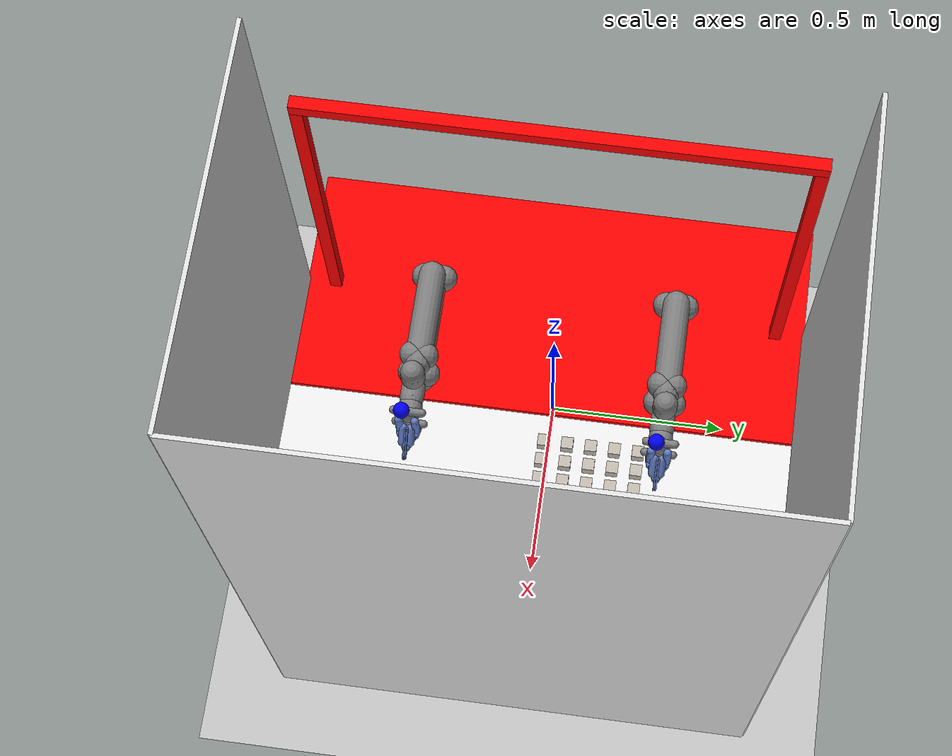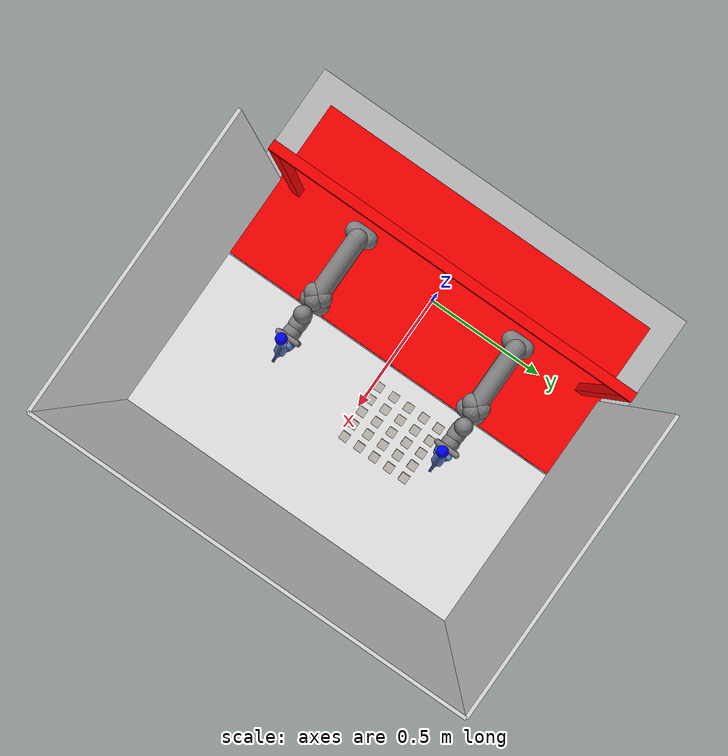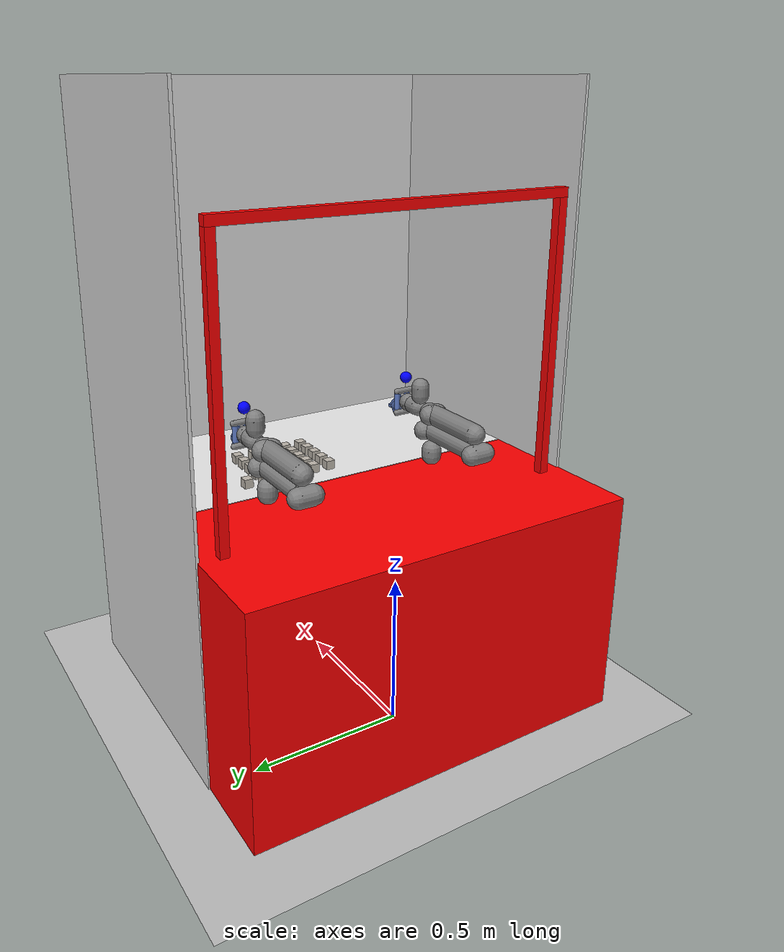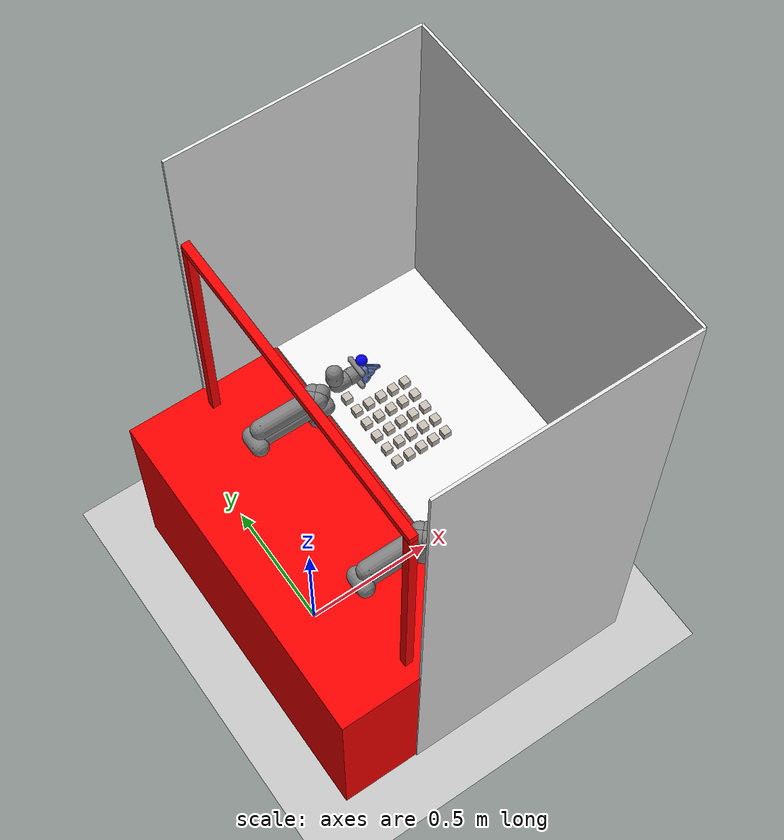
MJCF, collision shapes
<mujoco model="yam_bimanual">
  <compiler angle="radian" meshdir="assets" boundmass="0.001" boundinertia="0.001"/>

  <option integrator="implicitfast"/>

  <visual>
    <global azimuth="120" elevation="-20" offwidth="1920" offheight="1080"/>
    <quality shadowsize="8192" offsamples="16"/>
    <headlight ambient="0.40 0.40 0.40" diffuse="0.0 0.0 0.0" specular="0 0 0"/>
    <rgba haze="1.0 1.0 1.0 1"/>
  </visual>

  <default>
    <default class="yam">
      <position inheritrange="1"/>
      <joint frictionloss="0.1" axis="0 0 1"/>
      <default class="dm4340">
        <joint armature="0.032"/>
        <position kp="40" kv="2.5" forcerange="-28 28"/>
      </default>
      <default class="dm4310">
        <joint armature="0.0018"/>
        <position kp="10" kv="1" forcerange="-10 10"/>
      </default>
      <default class="visual">
        <geom type="mesh" contype="0" conaffinity="0" density="0" group="2" material="black"/>
      </default>
      <default class="collision">
        <geom group="3" type="capsule"/>
        <default class="sphere_collision">
          <geom size="0.0006 0 0" type="sphere" rgba="1 0 0 1"/>
        </default>
      </default>
      <default class="finger">
        <joint type="slide" armature="0.1" frictionloss="0.1"/>
        <position ctrlrange="0.0 0.0495" kp="100" kv="10" inheritrange="0"/>
      </default>
    </default>
    <default class="drawer_col">
      <geom type="mesh" condim="6" friction="1.5 0.1 0.01" density="0" solref="0.004 1" solimp="0.998 0.998 0.001" priority="1" group="3" rgba="0 0 0 0"/>
    </default>
    <default class="block_col">
      <geom type="box" condim="6" friction="3.0 0.1 0.01" solref="0.004 1" solimp="0.998 0.998 0.001" priority="1"/>
    </default>
  </default>

  <asset>
    <material name="black" rgba="0.30 0.30 0.30 1"/>
    <material name="white" rgba="0.9 0.9 0.9 1"/>

    <!-- YAM robot meshes -->
    <mesh file="i2rt_yam/assets/model2.stl"/>
    <mesh file="i2rt_yam/assets/model2__2.stl"/>
    <mesh file="i2rt_yam/assets/model2__3.stl"/>
    <mesh file="i2rt_yam/assets/model2__4.stl"/>
    <mesh file="i2rt_yam/assets/model2__5.stl"/>
    <mesh file="i2rt_yam/assets/model2__6.stl"/>
    <mesh file="i2rt_yam/assets/model2__7.stl"/>
    <mesh file="i2rt_yam/assets/model2__8.stl"/>
    <mesh file="i2rt_yam/assets/model2__9.stl"/>
    <mesh file="i2rt_yam/assets/model2__10.stl"/>
    <mesh file="i2rt_yam/assets/model2__11.stl"/>
    <mesh file="i2rt_yam/assets/model2__12.stl"/>
    <mesh file="i2rt_yam/assets/model2__13.stl"/>
    <mesh file="i2rt_yam/assets/model2__14.stl"/>
    <mesh file="i2rt_yam/assets/model2__15.stl"/>
    <mesh file="i2rt_yam/assets/model2__16.stl"/>
    <mesh file="i2rt_yam/assets/model2__17.stl"/>
    <mesh name="base_visual_gate" file="i2rt_yam/assets/base_visual_gate.stl"/>
    <mesh name="camera_d405" file="i2rt_yam/assets/d405.stl"/>

    <!-- Drawer meshes -->
    <mesh name="mk1157_counter_collision_01" file="drawer/meshes/mk1157_counter_collision_01.stl" scale="0.4 0.23 0.1"/>
    <mesh name="mk1157_counter_collision_02" file="drawer/meshes/mk1157_counter_collision_02.stl" scale="0.4 0.23 0.1"/>
    <mesh name="mk1157_counter_collision_03" file="drawer/meshes/mk1157_counter_collision_03.stl" scale="0.4 0.23 0.1"/>
    <mesh name="mk1157_counter_collision_04" file="drawer/meshes/mk1157_counter_collision_04.stl" scale="0.4 0.23 0.1"/>
    <mesh name="mk1157_counter_collision_05" file="drawer/meshes/mk1157_counter_collision_05.stl" scale="0.4 0.23 0.1"/>
    <mesh name="mk1157_counter_collision_06" file="drawer/meshes/mk1157_counter_collision_06.stl" scale="0.4 0.23 0.1"/>
    <mesh name="mk1157_counter_collision_07" file="drawer/meshes/mk1157_counter_collision_07.stl" scale="0.4 0.23 0.1"/>
    <mesh name="mk1157_drawer_collision_01" file="drawer/meshes/mk1157_drawer_collision_01.stl" scale="0.37 0.23 0.15"/>
    <mesh name="mk1157_drawer_collision_02" file="drawer/meshes/mk1157_drawer_collision_02.stl" scale="0.37 0.23 0.15"/>
    <mesh name="mk1157_drawer_collision_03" file="drawer/meshes/mk1157_drawer_collision_03.stl" scale="0.37 0.23 0.15"/>
    <mesh name="mk1157_drawer_collision_04" file="drawer/meshes/mk1157_drawer_collision_04.stl" scale="0.37 0.23 0.15"/>
    <mesh name="mk1157_drawer_collision_05" file="drawer/meshes/mk1157_drawer_collision_05.stl" scale="0.37 0.23 0.15"/>

    <!-- Letter block textures (A–Z) -->
    <texture type="2d" name="tex_letter_A" file="assets/letters/letter_A.png"/>
    <texture type="2d" name="tex_letter_B" file="assets/letters/letter_B.png"/>
    <texture type="2d" name="tex_letter_C" file="assets/letters/letter_C.png"/>
    <texture type="2d" name="tex_letter_D" file="assets/letters/letter_D.png"/>
    <texture type="2d" name="tex_letter_E" file="assets/letters/letter_E.png"/>
    <texture type="2d" name="tex_letter_F" file="assets/letters/letter_F.png"/>
    <texture type="2d" name="tex_letter_G" file="assets/letters/letter_G.png"/>
    <texture type="2d" name="tex_letter_H" file="assets/letters/letter_H.png"/>
    <texture type="2d" name="tex_letter_I" file="assets/letters/letter_I.png"/>
    <texture type="2d" name="tex_letter_J" file="assets/letters/letter_J.png"/>
    <texture type="2d" name="tex_letter_K" file="assets/letters/letter_K.png"/>
    <texture type="2d" name="tex_letter_L" file="assets/letters/letter_L.png"/>
    <texture type="2d" name="tex_letter_M" file="assets/letters/letter_M.png"/>
    <texture type="2d" name="tex_letter_N" file="assets/letters/letter_N.png"/>
    <texture type="2d" name="tex_letter_O" file="assets/letters/letter_O.png"/>
    <texture type="2d" name="tex_letter_P" file="assets/letters/letter_P.png"/>
    <texture type="2d" name="tex_letter_Q" file="assets/letters/letter_Q.png"/>
    <texture type="2d" name="tex_letter_R" file="assets/letters/letter_R.png"/>
    <texture type="2d" name="tex_letter_S" file="assets/letters/letter_S.png"/>
    <texture type="2d" name="tex_letter_T" file="assets/letters/letter_T.png"/>
    <texture type="2d" name="tex_letter_U" file="assets/letters/letter_U.png"/>
    <texture type="2d" name="tex_letter_V" file="assets/letters/letter_V.png"/>
    <texture type="2d" name="tex_letter_W" file="assets/letters/letter_W.png"/>
    <texture type="2d" name="tex_letter_X" file="assets/letters/letter_X.png"/>
    <texture type="2d" name="tex_letter_Y" file="assets/letters/letter_Y.png"/>
    <texture type="2d" name="tex_letter_Z" file="assets/letters/letter_Z.png"/>

    <material name="mat_letter_A" texture="tex_letter_A" texuniform="true" texrepeat="1 1"/>
    <material name="mat_letter_B" texture="tex_letter_B" texuniform="true" texrepeat="1 1"/>
    <material name="mat_letter_C" texture="tex_letter_C" texuniform="true" texrepeat="1 1"/>
    <material name="mat_letter_D" texture="tex_letter_D" texuniform="true" texrepeat="1 1"/>
    <material name="mat_letter_E" texture="tex_letter_E" texuniform="true" texrepeat="1 1"/>
    <material name="mat_letter_F" texture="tex_letter_F" texuniform="true" texrepeat="1 1"/>
    <material name="mat_letter_G" texture="tex_letter_G" texuniform="true" texrepeat="1 1"/>
    <material name="mat_letter_H" texture="tex_letter_H" texuniform="true" texrepeat="1 1"/>
    <material name="mat_letter_I" texture="tex_letter_I" texuniform="true" texrepeat="1 1"/>
    <material name="mat_letter_J" texture="tex_letter_J" texuniform="true" texrepeat="1 1"/>
    <material name="mat_letter_K" texture="tex_letter_K" texuniform="true" texrepeat="1 1"/>
    <material name="mat_letter_L" texture="tex_letter_L" texuniform="true" texrepeat="1 1"/>
    <material name="mat_letter_M" texture="tex_letter_M" texuniform="true" texrepeat="1 1"/>
    <material name="mat_letter_N" texture="tex_letter_N" texuniform="true" texrepeat="1 1"/>
    <material name="mat_letter_O" texture="tex_letter_O" texuniform="true" texrepeat="1 1"/>
    <material name="mat_letter_P" texture="tex_letter_P" texuniform="true" texrepeat="1 1"/>
    <material name="mat_letter_Q" texture="tex_letter_Q" texuniform="true" texrepeat="1 1"/>
    <material name="mat_letter_R" texture="tex_letter_R" texuniform="true" texrepeat="1 1"/>
    <material name="mat_letter_S" texture="tex_letter_S" texuniform="true" texrepeat="1 1"/>
    <material name="mat_letter_T" texture="tex_letter_T" texuniform="true" texrepeat="1 1"/>
    <material name="mat_letter_U" texture="tex_letter_U" texuniform="true" texrepeat="1 1"/>
    <material name="mat_letter_V" texture="tex_letter_V" texuniform="true" texrepeat="1 1"/>
    <material name="mat_letter_W" texture="tex_letter_W" texuniform="true" texrepeat="1 1"/>
    <material name="mat_letter_X" texture="tex_letter_X" texuniform="true" texrepeat="1 1"/>
    <material name="mat_letter_Y" texture="tex_letter_Y" texuniform="true" texrepeat="1 1"/>
    <material name="mat_letter_Z" texture="tex_letter_Z" texuniform="true" texrepeat="1 1"/>

    <texture type="skybox" builtin="gradient" rgb1="1.0 1.0 1.0" rgb2="0.98 0.98 0.98" width="512" height="3072"/>
    <texture type="2d" name="groundplane" builtin="checker" mark="edge"
      rgb1="0.55 0.55 0.55" rgb2="0.50 0.50 0.50" markrgb="0.6 0.6 0.6" width="300" height="300"/>
    <material name="groundplane" texture="groundplane" texuniform="true" texrepeat="5 5" reflectance="0.2"/>
  </asset>

  <worldbody>
    <!-- Lighting -->
    <light pos="0 0 1.5" dir="0 0 -1" directional="true"
      diffuse="0.30 0.30 0.30" specular="0.05 0.05 0.05"/>

    <!-- Floor -->
    <geom name="floor" size="0 0 0.05" type="plane" rgba="0.75 0.75 0.75 1"/>

    <!-- Gate/station structure (visual) -->
    <geom type="mesh" contype="0" conaffinity="0" group="2" density="0" rgba="0.60 0.62 0.68 1" mesh="base_visual_gate"/>
    <geom size="0.2975 0.65 0.375" pos="0 0 0.375" type="box" group="3" rgba="1 0 0 0.0"/>

    <!-- Gate collision bodies + top camera -->
    <body name="gate_collision" pos="0 0 0.75">
      <geom size="0.015 0.015 0.45" pos="0 0.575 0.45" type="box" group="3" rgba="1 0 0 0.0"/>
      <geom size="0.015 0.015 0.45" pos="0 -0.575 0.45" type="box" group="3" rgba="1 0 0 0.0"/>
      <geom size="0.015 0.015 0.59" pos="0 0 0.915" quat="0.707107 0.707107 0 0" type="box" group="3" rgba="1 0 0 0.0"/>
      <body name="top_bar_center" pos="0 0 0.915">
        <body name="top_camera_d405" pos="0.08600512 -0.009 0.03932053" quat="0.183012 0.683013 0.683013 0.183012">
          <geom type="mesh" contype="0" conaffinity="0" group="2" density="0.001" mass="0.001"
            rgba="0 0 0 0" mesh="camera_d405"/>
          <body name="top_camera_frame" pos="0.009 0 0" quat="0 0 0 1">
            <camera name="top" pos="0 0 0" quat="0 1 0 0" fovy="58"/>
          </body>
        </body>
      </body>
    </body>

    <!-- Enclosure walls (visual-only) -->
    <geom name="back_wall" type="box" size="0.005 0.65 1.0"
      pos="0.9 0 1.0" group="2" contype="0" conaffinity="0"
      rgba="0.88 0.88 0.88 1"/>
    <geom name="left_wall" type="box" size="0.45 0.005 1.0"
      pos="0.45 0.65 1.0" group="2" contype="0" conaffinity="0"
      rgba="0.88 0.88 0.88 1"/>
    <geom name="right_wall" type="box" size="0.45 0.005 1.0"
      pos="0.45 -0.65 1.0" group="2" contype="0" conaffinity="0"
      rgba="0.88 0.88 0.88 1"/>

    <!-- Play table -->
    <body name="play_table">
      <geom size="0.2975 0.65 0.005" pos="0.6 0 0.745" type="box" group="2" contype="0" conaffinity="0" rgba="0.92 0.92 0.92 1"/>
    </body>
    <geom name="table_plane" type="plane" size="0.2975 0.65 0.01" pos="0.6 0 0.75" rgba="0 0 0 0" group="3"/>

    <!-- Overhead camera -->
    <body name="overhead_camera" pos="0.55 0.0 1.6">
      <camera name="overhead" pos="0 0 0" quat="0.707 0 0 -0.707" fovy="60"/>
    </body>
    <body name="left_side_camera" pos="0.5 0.55 1.05" euler="-1.3 0 3.14159">
      <camera name="left_side" pos="0 0 0" fovy="70"/>
    </body>
    <body name="right_side_camera" pos="0.5 -0.55 1.05" euler="1.3 0 0">
      <camera name="right_side" pos="0 0 0" fovy="70"/>
    </body>

    <!-- ==================== TASK OBJECTS: Drawer + Letter Blocks ==================== -->

    <!-- Letter blocks on table — all 26 letters (A–Z) in a 5×6 grid -->
    <!-- Grid: 5 columns (X: 0.38–0.58, step 0.05), 6 rows (Y: 0.02–0.32, step 0.06) -->
    <body name="block_A" pos="0.38 0.02 0.77">
      <freejoint name="block_A_jnt"/>
      <geom name="block_A_geom" type="box" size="0.015 0.015 0.015" mass="0.044"
        material="mat_letter_A" class="block_col"/>
    </body>
    <body name="block_B" pos="0.43 0.02 0.77">
      <freejoint name="block_B_jnt"/>
      <geom name="block_B_geom" type="box" size="0.015 0.015 0.015" mass="0.044"
        material="mat_letter_B" class="block_col"/>
    </body>
    <body name="block_C" pos="0.48 0.02 0.77">
      <freejoint name="block_C_jnt"/>
      <geom name="block_C_geom" type="box" size="0.015 0.015 0.015" mass="0.044"
        material="mat_letter_C" class="block_col"/>
    </body>
    <body name="block_D" pos="0.53 0.02 0.77">
      <freejoint name="block_D_jnt"/>
      <geom name="block_D_geom" type="box" size="0.015 0.015 0.015" mass="0.044"
        material="mat_letter_D" class="block_col"/>
    </body>
    <body name="block_E" pos="0.58 0.02 0.77">
      <freejoint name="block_E_jnt"/>
      <geom name="block_E_geom" type="box" size="0.015 0.015 0.015" mass="0.044"
        material="mat_letter_E" class="block_col"/>
    </body>

    <body name="block_F" pos="0.38 0.08 0.77">
      <freejoint name="block_F_jnt"/>
      <geom name="block_F_geom" type="box" size="0.015 0.015 0.015" mass="0.044"
        material="mat_letter_F" class="block_col"/>
    </body>
    <body name="block_G" pos="0.43 0.08 0.77">
      <freejoint name="block_G_jnt"/>
      <geom name="block_G_geom" type="box" size="0.015 0.015 0.015" mass="0.044"
        material="mat_letter_G" class="block_col"/>
    </body>
    <body name="block_H" pos="0.48 0.08 0.77">
      <freejoint name="block_H_jnt"/>
      <geom name="block_H_geom" type="box" size="0.015 0.015 0.015" mass="0.044"
        material="mat_letter_H" class="block_col"/>
    </body>
    <body name="block_I" pos="0.53 0.08 0.77">
      <freejoint name="block_I_jnt"/>
      <geom name="block_I_geom" type="box" size="0.015 0.015 0.015" mass="0.044"
        material="mat_letter_I" class="block_col"/>
    </body>
    <body name="block_J" pos="0.58 0.08 0.77">
      <freejoint name="block_J_jnt"/>
      <geom name="block_J_geom" type="box" size="0.015 0.015 0.015" mass="0.044"
        material="mat_letter_J" class="block_col"/>
    </body>

    <body name="block_K" pos="0.38 0.14 0.77">
      <freejoint name="block_K_jnt"/>
      <geom name="block_K_geom" type="box" size="0.015 0.015 0.015" mass="0.044"
        material="mat_letter_K" class="block_col"/>
    </body>
    <body name="block_L" pos="0.43 0.14 0.77">
      <freejoint name="block_L_jnt"/>
      <geom name="block_L_geom" type="box" size="0.015 0.015 0.015" mass="0.044"
        material="mat_letter_L" class="block_col"/>
    </body>
    <body name="block_M" pos="0.48 0.14 0.77">
      <freejoint name="block_M_jnt"/>
      <geom name="block_M_geom" type="box" size="0.015 0.015 0.015" mass="0.044"
        material="mat_letter_M" class="block_col"/>
    </body>
    <body name="block_N" pos="0.53 0.14 0.77">
      <freejoint name="block_N_jnt"/>
      <geom name="block_N_geom" type="box" size="0.015 0.015 0.015" mass="0.044"
        material="mat_letter_N" class="block_col"/>
    </body>
    <body name="block_O" pos="0.58 0.14 0.77">
      <freejoint name="block_O_jnt"/>
      <geom name="block_O_geom" type="box" size="0.015 0.015 0.015" mass="0.044"
        material="mat_letter_O" class="block_col"/>
    </body>

    <body name="block_P" pos="0.38 0.20 0.77">
      <freejoint name="block_P_jnt"/>
      <geom name="block_P_geom" type="box" size="0.015 0.015 0.015" mass="0.044"
        material="mat_letter_P" class="block_col"/>
    </body>
    <body name="block_Q" pos="0.43 0.20 0.77">
      <freejoint name="block_Q_jnt"/>
      <geom name="block_Q_geom" type="box" size="0.015 0.015 0.015" mass="0.044"
        material="mat_letter_Q" class="block_col"/>
    </body>
    <body name="block_R" pos="0.48 0.20 0.77">
      <freejoint name="block_R_jnt"/>
      <geom name="block_R_geom" type="box" size="0.015 0.015 0.015" mass="0.044"
        material="mat_letter_R" class="block_col"/>
    </body>
    <body name="block_S" pos="0.53 0.20 0.77">
      <freejoint name="block_S_jnt"/>
      <geom name="block_S_geom" type="box" size="0.015 0.015 0.015" mass="0.044"
        material="mat_letter_S" class="block_col"/>
    </body>
    <body name="block_T" pos="0.58 0.20 0.77">
      <freejoint name="block_T_jnt"/>
      <geom name="block_T_geom" type="box" size="0.015 0.015 0.015" mass="0.044"
        material="mat_letter_T" class="block_col"/>
    </body>

    <body name="block_U" pos="0.38 0.26 0.77">
      <freejoint name="block_U_jnt"/>
      <geom name="block_U_geom" type="box" size="0.015 0.015 0.015" mass="0.044"
        material="mat_letter_U" class="block_col"/>
    </body>
    <body name="block_V" pos="0.43 0.26 0.77">
      <freejoint name="block_V_jnt"/>
      <geom name="block_V_geom" type="box" size="0.015 0.015 0.015" mass="0.044"
        material="mat_letter_V" class="block_col"/>
    </body>
    <body name="block_W" pos="0.48 0.26 0.77">
      <freejoint name="block_W_jnt"/>
      <geom name="block_W_geom" type="box" size="0.015 0.015 0.015" mass="0.044"
        material="mat_letter_W" class="block_col"/>
    </body>
    <body name="block_X" pos="0.53 0.26 0.77">
      <freejoint name="block_X_jnt"/>
      <geom name="block_X_geom" type="box" size="0.015 0.015 0.015" mass="0.044"
        material="mat_letter_X" class="block_col"/>
    </body>
    <body name="block_Y" pos="0.58 0.26 0.77">
      <freejoint name="block_Y_jnt"/>
      <geom name="block_Y_geom" type="box" size="0.015 0.015 0.015" mass="0.044"
        material="mat_letter_Y" class="block_col"/>
    </body>

    <body name="block_Z" pos="0.38 0.32 0.77">
      <freejoint name="block_Z_jnt"/>
      <geom name="block_Z_geom" type="box" size="0.015 0.015 0.015" mass="0.044"
        material="mat_letter_Z" class="block_col"/>
    </body>

    <!-- ==================== LEFT ARM ==================== -->
    <body name="left_arm" pos="0.2525 0.31 0.76" childclass="yam">
      <geom class="visual" pos="0 0 -0.0006" quat="1 0 0 1" mesh="model2"/>
      <geom class="collision" size="0.033 0.01" pos="0.0 0.0 0.026" quat="1 0 0 0"/>
      <body name="left_link_1" pos="0 0 0.0631" quat="1 0 0 1">
        <inertial pos="-0.00192861 -0.00795735 0.0208176" quat="0.297851 0.642634 0.360045 0.607185" mass="0.12415"
          diaginertia="0.000180751 0.000145532 5.89179e-05"/>
        <joint name="left_joint1" range="-2.61799 3.05433" class="dm4340"/>
        <geom class="visual" pos="5.26159e-07 2.34355e-07 -0.0632" quat="1 0 0 0" mesh="model2__2"/>
        <body name="left_link_2" pos="2.5e-05 -0.02 0.0409" quat="1 1 1 1" gravcomp="1">
          <inertial pos="0.132008 2.10599e-06 0.000293073" quat="1 1 1 1" mass="1.24434"
            diaginertia="0.0121902 0.0121318 0.000683304"/>
          <joint name="left_joint2" range="0 3.66519" class="dm4340"/>
          <geom class="visual" pos="0.0199992 -0.1041 -2.44738e-05" quat="1 -1 -1 -1" mesh="model2__3"/>
          <geom class="visual" pos="0.0199992 -0.1041 -2.44738e-05" quat="1 -1 -1 -1" mesh="model2__4"/>
          <geom class="visual" pos="0.0199992 -0.1041 -2.44738e-05" quat="1 -1 -1 -1" mesh="model2__5" material="white"/>
          <geom class="collision" size="0.032 0.11" pos="0.13 0 0" quat="1 0 1 0"/>
          <geom class="collision" size="0.033 0.02" pos="0 0.0 0" quat="1 0 0 0"/>
          <geom class="collision" size="0.033 0.025" pos="0.265 0 0" quat="1 0 0 0"/>
          <body name="left_link_3" pos="0.264 0 0" quat="0 1 0 0" gravcomp="1">
            <inertial pos="-0.121816 -0.054846 -0.000111108" quat="1 1 1 1" mass="0.853698"
              diaginertia="0.00699732 0.00696112 0.000788244"/>
            <joint name="left_joint3" range="0 3.66519" class="dm4340"/>
            <geom class="visual" pos="-0.244001 0.104101 2.44738e-05" quat="1 1 1 -1" mesh="model2__6"/>
            <geom class="visual" pos="-0.244001 0.104101 2.44738e-05" quat="1 1 1 -1" mesh="model2__7"/>
            <geom class="visual" pos="-0.244001 0.104101 2.44738e-05" quat="1 1 1 -1" mesh="model2__8" material="white"/>
            <geom class="visual" pos="-0.244001 0.104101 2.44738e-05" quat="1 1 1 -1" mesh="model2__9"/>
            <geom class="collision" size="0.034 0.12" pos="-0.14 -0.06 0.0" quat="1 0 1 0"/>
            <geom class="collision" size="0.034 0.015" pos="-0.24 -0.06 0.0" quat="1 0 0 0"/>
            <body name="left_link_4" pos="-0.245 -0.06 0" quat="1 0 0 0" gravcomp="1">
              <inertial pos="-0.0769778 -0.0527104 0.000154878" quat="0.667 0.667 -0.236 -0.236" mass="0.463511"
                diaginertia="0.000791532 0.000744733 0.000282116"/>
              <joint name="left_joint4" range="-1.5708 1.5708" class="dm4310"/>
              <geom class="visual" pos="0.00100023 0.164101 2.44738e-05" quat="1 1 1 -1" mesh="model2__10"/>
              <geom class="collision" size="0.03 0.015" pos="-0.073 -0.06 0.0" quat="1 1 0 0"/>
              <body name="left_link_5" pos="-0.074 -0.0395 2.5e-05" quat="1 -1 1 1" gravcomp="1">
                <inertial pos="3.64861e-05 0.00025665 0.0353526" quat="1 0 0 0" mass="0.350962"
                  diaginertia="0.000197802 0.0001775 0.000147402"/>
                <joint name="left_joint5" range="-1.5708 1.5708" class="dm4310"/>
                <geom class="visual" pos="0 -0.0749971 0.203601" quat="1.32679e-06 1 0 0" mesh="model2__11"/>
                <geom class="collision" size="0.030 0.015" pos="0 0.025 0.0395" quat="1 1 0 0"/>
                <body name="left_link_6" pos="0 0.0353 0.0395" quat="1 -1 0 0" gravcomp="1">
                  <inertial pos="-0.000217767 7.37059e-05 0.0270545" quat="1 1 0 0" mass="0.367476"
                    diaginertia="0.000265958 0.000242686 0.000227409"/>
                  <joint name="left_joint6" range="-2.0944 2.0944" class="dm4310"/>
                  <geom class="visual" pos="0 -0.164101 -0.110597" quat="1 -1 0 0" mesh="model2__12"/>
                  <geom class="visual" pos="0 -0.164101 -0.110597" quat="1 -1 0 0" mesh="model2__13"/>
                  <geom class="collision" size="0.01 0.035" pos="0 0.039 0.052" quat="1 0 1 0"/>
                  <geom class="collision" size="0.030 0.005" pos="0 0.0 0.03" quat="1 0 0 1"/>
                  <geom class="collision" size="0.01 0.035" pos="0 -0.039 0.052" quat="1 0 1 0"/>
                  <site name="left_tcp_site" pos="0 0 0" quat="1 0 0 -1" size="0.005" rgba="1 0 0 1" group="4"/>
                  <site name="left_grasp_site" pos="0 0 0.1347" quat="1 0 0 -1" size="0.005" rgba="0 1 0 1" group="4"/>
                  <!-- Wrist-mounted left camera (D405) -->
                  <body name="left_camera_d405" pos="-0.0107 0.079729 0.066021" quat="0.906 0.423 0 0">
                    <geom type="mesh" contype="0" conaffinity="0" group="3" density="0.001" mass="0.001"
                      rgba="0 0 0 0" mesh="camera_d405"/>
                    <geom name="left_cam_col" type="sphere" size="0.02" pos="0 0 0"
                      group="3" rgba="0 0 1 0.0" mass="0.001"/>
                    <body name="left_camera_frame" pos="0.009 0 0" quat="0 0 0 1">
                      <camera name="left" pos="0 0 0" quat="0 1 0 0" fovy="58"/>
                    </body>
                  </body>
                  <body name="left_link_left_finger" pos="-0.037 0.0392 0.0605" quat="1 0 1 0" gravcomp="1">
                    <inertial pos="-0.0192995 -0.0365902 0.039774" quat="0.757351 0.568898 -0.3199 0.0" mass="0.118"
                      diaginertia="0.000159084 0.000154909 4.63655e-05"/>
                    <joint class="finger" name="left_left_finger" range="-0.00205 0.0475"/>
                    <geom class="visual" pos="0.171097 -0.203301 0.037" quat="1 -1 -1 -1" mesh="model2__14"/>
                    <geom class="visual" pos="0.171097 -0.203301 0.037" quat="1 -1 -1 -1" mesh="model2__15"/>
                    <body name="left_lf_rot" quat="1 -1 -1 1" pos="0.0 -0.0392 0.037" gravcomp="1">
                      <geom class="collision" size="0.01 0.03" pos="0.0 -0.02 0.012" quat="1 0 1 0"
                        rgba="0.381493 0.492734 0.780446 1"/>
                      <geom class="collision" size="0.01 0.02" pos="-0.02 -0.01 0.032" quat="1 0 2.5 0"
                        rgba="0.381493 0.492734 0.780446 1"/>
                      <body name="left_lf_down" quat="1 0 0 0" pos="-0.044 0.0 0.0" gravcomp="1">
                        <geom class="collision" size="0.01 0.01" pos="0.0 -0.020 0.012" quat="1 -0.1 0 0"
                          rgba="0.381493 0.492734 0.780446 1"/>
                        <geom class="collision" size="0.003 0.022" pos="0.005 -0.014 0.04" quat="1 -0.2 0 0"
                          rgba="0.381493 0.492734 0.780446 1"/>
                        <geom class="collision" size="0.003 0.022" pos="-0.005 -0.014 0.04" quat="1 -0.2 0 0"
                          rgba="0.381493 0.492734 0.780446 1"/>
                        <geom class="collision" type="box" size="0.006 0.002 0.04" pos="0 -0.0024 0.046" quat="1 0 0 0"
                          rgba="0.381493 0.492734 0.780446 1"/>
                        <geom class="collision" type="box" size="0.006 0.002 0.039" pos="0.027 -0.0024 0.053"
                          quat="1 0 2.5 0" rgba="0.381493 0.492734 0.780446 1"/>
                        <geom class="sphere_collision" pos="0.003  -0.0004 0.078"/>
                        <geom class="sphere_collision" pos="-0.003 -0.0004 0.078"/>
                        <geom class="sphere_collision" pos="0.003  -0.0004 0.07"/>
                        <geom class="sphere_collision" pos="-0.003 -0.0004 0.07"/>
                        <geom class="sphere_collision" pos="0.003  -0.0004 0.06"/>
                        <geom class="sphere_collision" pos="-0.003 -0.0004 0.06"/>
                      </body>
                    </body>
                  </body>
                  <body name="left_link_right_finger" pos="0.037 -0.0392 0.0605" quat="1 0 1 0" gravcomp="1">
                    <inertial pos="-0.0192995 0.0365902 -0.039774" quat="-0.757351 0.568898 -0.3199 0" mass="0.118"
                      diaginertia="0.000159084 0.000154909 4.63655e-05"/>
                    <joint class="finger" name="left_right_finger" range="-0.0475 0.00205"/>
                    <geom class="visual" pos="0.171097 -0.124901 -0.037" quat="1 -1 -1 -1" mesh="model2__16"/>
                    <geom class="visual" pos="0.171097 -0.124901 -0.037" quat="1 -1 -1 -1" mesh="model2__17"/>
                    <body name="left_rf_rot" quat="1 1 -1 -1" pos="0.0 0.0392 -0.037" gravcomp="1">
                      <geom class="collision" size="0.01 0.03" pos="0.0 -0.02 0.012" quat="1 0 1 0"
                        rgba="0.381493 0.492734 0.780446 1"/>
                      <geom class="collision" size="0.01 0.02" pos="0.02 -0.01 0.032" quat="1 0 -2.5 0"
                        rgba="0.381493 0.492734 0.780446 1"/>
                      <body name="left_rf_down" quat="1 0 0 0" pos="0.044 0.0 0.0" gravcomp="1">
                        <geom class="collision" size="0.01 0.01" pos="0.0 -0.020 0.012" quat="1 -0.1 0 0"
                          rgba="0.381493 0.492734 0.780446 1"/>
                        <geom class="collision" size="0.003 0.022" pos="0.005 -0.014 0.04" quat="1 -0.2 0 0"
                          rgba="0.381493 0.492734 0.780446 1"/>
                        <geom class="collision" size="0.003 0.022" pos="-0.005 -0.014 0.04" quat="1 -0.2 0 0"
                          rgba="0.381493 0.492734 0.780446 1"/>
                        <geom class="collision" type="box" size="0.006 0.002 0.04" pos="0 -0.0024 0.046" quat="1 0 0 0"
                          rgba="0.381493 0.492734 0.780446 1"/>
                        <geom class="collision" type="box" size="0.006 0.002 0.039" pos="-0.027 -0.0024 0.053"
                          quat="1 0 -2.5 0" rgba="0.381493 0.492734 0.780446 1"/>
                        <geom class="sphere_collision" pos="0.003  -0.0004 0.078"/>
                        <geom class="sphere_collision" pos="-0.003 -0.0004 0.078"/>
                        <geom class="sphere_collision" pos="0.003  -0.0004 0.07"/>
                        <geom class="sphere_collision" pos="-0.003 -0.0004 0.07"/>
                        <geom class="sphere_collision" pos="0.003  -0.0004 0.06"/>
                        <geom class="sphere_collision" pos="-0.003 -0.0004 0.06"/>
                      </body>
                    </body>
                  </body>
                </body>
              </body>
            </body>
          </body>
        </body>
      </body>
    </body>

    <!-- ==================== RIGHT ARM ==================== -->
    <body name="right_arm" pos="0.2525 -0.31 0.76" childclass="yam">
      <geom class="visual" pos="0 0 -0.0006" quat="1 0 0 1" mesh="model2"/>
      <geom class="collision" size="0.033 0.01" pos="0.0 0.0 0.026" quat="1 0 0 0"/>
      <body name="right_link_1" pos="0 0 0.0631" quat="1 0 0 1">
        <inertial pos="-0.00192861 -0.00795735 0.0208176" quat="0.297851 0.642634 0.360045 0.607185" mass="0.12415"
          diaginertia="0.000180751 0.000145532 5.89179e-05"/>
        <joint name="right_joint1" range="-2.61799 3.05433" class="dm4340"/>
        <geom class="visual" pos="5.26159e-07 2.34355e-07 -0.0632" quat="1 0 0 0" mesh="model2__2"/>
        <body name="right_link_2" pos="2.5e-05 -0.02 0.0409" quat="1 1 1 1" gravcomp="1">
          <inertial pos="0.132008 2.10599e-06 0.000293073" quat="1 1 1 1" mass="1.24434"
            diaginertia="0.0121902 0.0121318 0.000683304"/>
          <joint name="right_joint2" range="0 3.66519" class="dm4340"/>
          <geom class="visual" pos="0.0199992 -0.1041 -2.44738e-05" quat="1 -1 -1 -1" mesh="model2__3"/>
          <geom class="visual" pos="0.0199992 -0.1041 -2.44738e-05" quat="1 -1 -1 -1" mesh="model2__4"/>
          <geom class="visual" pos="0.0199992 -0.1041 -2.44738e-05" quat="1 -1 -1 -1" mesh="model2__5" material="white"/>
          <geom class="collision" size="0.032 0.11" pos="0.13 0 0" quat="1 0 1 0"/>
          <geom class="collision" size="0.033 0.02" pos="0 0.0 0" quat="1 0 0 0"/>
          <geom class="collision" size="0.033 0.025" pos="0.265 0 0" quat="1 0 0 0"/>
          <body name="right_link_3" pos="0.264 0 0" quat="0 1 0 0" gravcomp="1">
            <inertial pos="-0.121816 -0.054846 -0.000111108" quat="1 1 1 1" mass="0.853698"
              diaginertia="0.00699732 0.00696112 0.000788244"/>
            <joint name="right_joint3" range="0 3.66519" class="dm4340"/>
            <geom class="visual" pos="-0.244001 0.104101 2.44738e-05" quat="1 1 1 -1" mesh="model2__6"/>
            <geom class="visual" pos="-0.244001 0.104101 2.44738e-05" quat="1 1 1 -1" mesh="model2__7"/>
            <geom class="visual" pos="-0.244001 0.104101 2.44738e-05" quat="1 1 1 -1" mesh="model2__8" material="white"/>
            <geom class="visual" pos="-0.244001 0.104101 2.44738e-05" quat="1 1 1 -1" mesh="model2__9"/>
            <geom class="collision" size="0.034 0.12" pos="-0.14 -0.06 0.0" quat="1 0 1 0"/>
            <geom class="collision" size="0.034 0.015" pos="-0.24 -0.06 0.0" quat="1 0 0 0"/>
            <body name="right_link_4" pos="-0.245 -0.06 0" quat="1 0 0 0" gravcomp="1">
              <inertial pos="-0.0769778 -0.0527104 0.000154878" quat="0.667 0.667 -0.236 -0.236" mass="0.463511"
                diaginertia="0.000791532 0.000744733 0.000282116"/>
              <joint name="right_joint4" range="-1.5708 1.5708" class="dm4310"/>
              <geom class="visual" pos="0.00100023 0.164101 2.44738e-05" quat="1 1 1 -1" mesh="model2__10"/>
              <geom class="collision" size="0.03 0.015" pos="-0.073 -0.06 0.0" quat="1 1 0 0"/>
              <body name="right_link_5" pos="-0.074 -0.0395 2.5e-05" quat="1 -1 1 1" gravcomp="1">
                <inertial pos="3.64861e-05 0.00025665 0.0353526" quat="1 0 0 0" mass="0.350962"
                  diaginertia="0.000197802 0.0001775 0.000147402"/>
                <joint name="right_joint5" range="-1.5708 1.5708" class="dm4310"/>
                <geom class="visual" pos="0 -0.0749971 0.203601" quat="1.32679e-06 1 0 0" mesh="model2__11"/>
                <geom class="collision" size="0.030 0.015" pos="0 0.025 0.0395" quat="1 1 0 0"/>
                <body name="right_link_6" pos="0 0.0353 0.0395" quat="1 -1 0 0" gravcomp="1">
                  <inertial pos="-0.000217767 7.37059e-05 0.0270545" quat="1 1 0 0" mass="0.367476"
                    diaginertia="0.000265958 0.000242686 0.000227409"/>
                  <joint name="right_joint6" range="-2.0944 2.0944" class="dm4310"/>
                  <geom class="visual" pos="0 -0.164101 -0.110597" quat="1 -1 0 0" mesh="model2__12"/>
                  <geom class="visual" pos="0 -0.164101 -0.110597" quat="1 -1 0 0" mesh="model2__13"/>
                  <geom class="collision" size="0.01 0.035" pos="0 0.039 0.052" quat="1 0 1 0"/>
                  <geom class="collision" size="0.030 0.005" pos="0 0.0 0.03" quat="1 0 0 1"/>
                  <geom class="collision" size="0.01 0.035" pos="0 -0.039 0.052" quat="1 0 1 0"/>
                  <site name="right_tcp_site" pos="0 0 0" quat="1 0 0 -1" size="0.005" rgba="1 0 0 1" group="4"/>
                  <site name="right_grasp_site" pos="0 0 0.1347" quat="1 0 0 -1" size="0.005" rgba="0 1 0 1" group="4"/>
                  <!-- Wrist-mounted right camera (D405) -->
                  <body name="right_camera_d405" pos="-0.0107 0.079729 0.066021" quat="0.906 0.423 0 0">
                    <geom type="mesh" contype="0" conaffinity="0" group="3" density="0.001" mass="0.001"
                      rgba="0 0 0 0" mesh="camera_d405"/>
                    <geom name="right_cam_col" type="sphere" size="0.02" pos="0 0 0"
                      group="3" rgba="0 0 1 0.0" mass="0.001"/>
                    <body name="right_camera_frame" pos="0.009 0 0" quat="0 0 0 1">
                      <camera name="right" pos="0 0 0" quat="0 1 0 0" fovy="58"/>
                    </body>
                  </body>
                  <body name="right_link_left_finger" pos="-0.037 0.0392 0.0605" quat="1 0 1 0" gravcomp="1">
                    <inertial pos="-0.0192995 -0.0365902 0.039774" quat="0.757351 0.568898 -0.3199 0.0" mass="0.118"
                      diaginertia="0.000159084 0.000154909 4.63655e-05"/>
                    <joint class="finger" name="right_left_finger" range="-0.00205 0.0475"/>
                    <geom class="visual" pos="0.171097 -0.203301 0.037" quat="1 -1 -1 -1" mesh="model2__14"/>
                    <geom class="visual" pos="0.171097 -0.203301 0.037" quat="1 -1 -1 -1" mesh="model2__15"/>
                    <body name="right_lf_rot" quat="1 -1 -1 1" pos="0.0 -0.0392 0.037" gravcomp="1">
                      <geom class="collision" size="0.01 0.03" pos="0.0 -0.02 0.012" quat="1 0 1 0"
                        rgba="0.381493 0.492734 0.780446 1"/>
                      <geom class="collision" size="0.01 0.02" pos="-0.02 -0.01 0.032" quat="1 0 2.5 0"
                        rgba="0.381493 0.492734 0.780446 1"/>
                      <body name="right_lf_down" quat="1 0 0 0" pos="-0.044 0.0 0.0" gravcomp="1">
                        <geom class="collision" size="0.01 0.01" pos="0.0 -0.020 0.012" quat="1 -0.1 0 0"
                          rgba="0.381493 0.492734 0.780446 1"/>
                        <geom class="collision" size="0.003 0.022" pos="0.005 -0.014 0.04" quat="1 -0.2 0 0"
                          rgba="0.381493 0.492734 0.780446 1"/>
                        <geom class="collision" size="0.003 0.022" pos="-0.005 -0.014 0.04" quat="1 -0.2 0 0"
                          rgba="0.381493 0.492734 0.780446 1"/>
                        <geom class="collision" type="box" size="0.006 0.002 0.04" pos="0 -0.0024 0.046" quat="1 0 0 0"
                          rgba="0.381493 0.492734 0.780446 1"/>
                        <geom class="collision" type="box" size="0.006 0.002 0.039" pos="0.027 -0.0024 0.053"
                          quat="1 0 2.5 0" rgba="0.381493 0.492734 0.780446 1"/>
                        <geom class="sphere_collision" pos="0.003  -0.0004 0.078"/>
                        <geom class="sphere_collision" pos="-0.003 -0.0004 0.078"/>
                        <geom class="sphere_collision" pos="0.003  -0.0004 0.07"/>
                        <geom class="sphere_collision" pos="-0.003 -0.0004 0.07"/>
                        <geom class="sphere_collision" pos="0.003  -0.0004 0.06"/>
                        <geom class="sphere_collision" pos="-0.003 -0.0004 0.06"/>
                      </body>
                    </body>
                  </body>
                  <body name="right_link_right_finger" pos="0.037 -0.0392 0.0605" quat="1 0 1 0" gravcomp="1">
                    <inertial pos="-0.0192995 0.0365902 -0.039774" quat="-0.757351 0.568898 -0.3199 0" mass="0.118"
                      diaginertia="0.000159084 0.000154909 4.63655e-05"/>
                    <joint class="finger" name="right_right_finger" range="-0.0475 0.00205"/>
                    <geom class="visual" pos="0.171097 -0.124901 -0.037" quat="1 -1 -1 -1" mesh="model2__16"/>
                    <geom class="visual" pos="0.171097 -0.124901 -0.037" quat="1 -1 -1 -1" mesh="model2__17"/>
                    <body name="right_rf_rot" quat="1 1 -1 -1" pos="0.0 0.0392 -0.037" gravcomp="1">
                      <geom class="collision" size="0.01 0.03" pos="0.0 -0.02 0.012" quat="1 0 1 0"
                        rgba="0.381493 0.492734 0.780446 1"/>
                      <geom class="collision" size="0.01 0.02" pos="0.02 -0.01 0.032" quat="1 0 -2.5 0"
                        rgba="0.381493 0.492734 0.780446 1"/>
                      <body name="right_rf_down" quat="1 0 0 0" pos="0.044 0.0 0.0" gravcomp="1">
                        <geom class="collision" size="0.01 0.01" pos="0.0 -0.020 0.012" quat="1 -0.1 0 0"
                          rgba="0.381493 0.492734 0.780446 1"/>
                        <geom class="collision" size="0.003 0.022" pos="0.005 -0.014 0.04" quat="1 -0.2 0 0"
                          rgba="0.381493 0.492734 0.780446 1"/>
                        <geom class="collision" size="0.003 0.022" pos="-0.005 -0.014 0.04" quat="1 -0.2 0 0"
                          rgba="0.381493 0.492734 0.780446 1"/>
                        <geom class="collision" type="box" size="0.006 0.002 0.04" pos="0 -0.0024 0.046" quat="1 0 0 0"
                          rgba="0.381493 0.492734 0.780446 1"/>
                        <geom class="collision" type="box" size="0.006 0.002 0.039" pos="-0.027 -0.0024 0.053"
                          quat="1 0 -2.5 0" rgba="0.381493 0.492734 0.780446 1"/>
                        <geom class="sphere_collision" pos="0.003  -0.0004 0.078"/>
                        <geom class="sphere_collision" pos="-0.003 -0.0004 0.078"/>
                        <geom class="sphere_collision" pos="0.003  -0.0004 0.07"/>
                        <geom class="sphere_collision" pos="-0.003 -0.0004 0.07"/>
                        <geom class="sphere_collision" pos="0.003  -0.0004 0.06"/>
                        <geom class="sphere_collision" pos="-0.003 -0.0004 0.06"/>
                      </body>
                    </body>
                  </body>
                </body>
              </body>
            </body>
          </body>
        </body>
      </body>
    </body>
  </worldbody>

  <!-- Equality constraints: mirror left/right finger per arm -->
  <equality>
    <joint joint1="left_left_finger" joint2="left_right_finger" polycoef="0 -1 0 0 0"/>
    <joint joint1="right_left_finger" joint2="right_right_finger" polycoef="0 -1 0 0 0"/>
  </equality>

  <!-- Actuators: 14 total (7 per arm) -->
  <actuator>
    <!-- Left arm -->
    <position name="left_joint1" joint="left_joint1" class="dm4340"/>
    <position name="left_joint2" joint="left_joint2" class="dm4340"/>
    <position name="left_joint3" joint="left_joint3" class="dm4340"/>
    <position name="left_joint4" joint="left_joint4" class="dm4310" kp="20" kv=".5"/>
    <position name="left_joint5" joint="left_joint5" class="dm4310"/>
    <position name="left_joint6" joint="left_joint6" class="dm4310"/>
    <position class="finger" name="left_gripper" joint="left_left_finger"/>
    <!-- Right arm -->
    <position name="right_joint1" joint="right_joint1" class="dm4340"/>
    <position name="right_joint2" joint="right_joint2" class="dm4340"/>
    <position name="right_joint3" joint="right_joint3" class="dm4340"/>
    <position name="right_joint4" joint="right_joint4" class="dm4310" kp="20" kv=".5"/>
    <position name="right_joint5" joint="right_joint5" class="dm4310"/>
    <position name="right_joint6" joint="right_joint6" class="dm4310"/>
    <position class="finger" name="right_gripper" joint="right_left_finger"/>
  </actuator>

  <!-- Home keyframe: both arms at default position + task objects at initial poses -->
  <!-- qpos order: 3 drawer slide joints, 8 letter blocks (7 each = 56), then 16 arm joints -->
  <keyframe>
    <key name="home"
      qpos="0.42 0.15 0.76 1 0 0 0
            0.48 0.18 0.76 1 0 0 0
            0.54 0.12 0.76 1 0 0 0
            0.42 0.05 0.76 1 0 0 0
            0.48 0.08 0.76 1 0 0 0
            0.54 0.22 0.76 1 0 0 0
            0.42 0.25 0.76 1 0 0 0
            0.48 0.28 0.76 1 0 0 0
            0 1.047 1.047 0 0 0 0 0  0 1.047 1.047 0 0 0 0 0"
      ctrl="0 1.047 1.047 0 0 0 0  0 1.047 1.047 0 0 0 0"/>
  </keyframe>
</mujoco>
